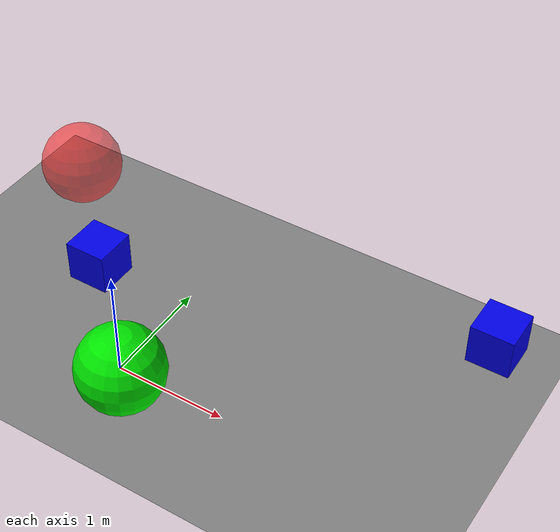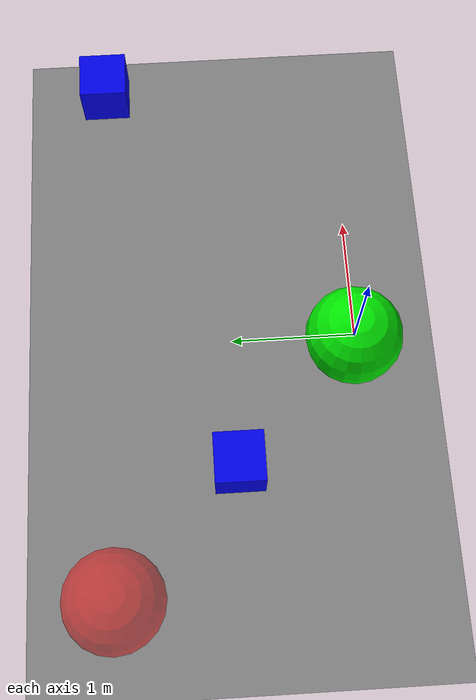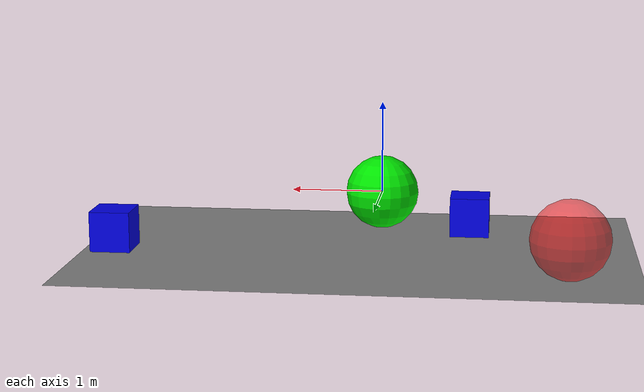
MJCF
<mujoco>
    <option gravity="0 0 0" timestep="0.005"/>
    <worldbody>
        <geom name='floor' pos='0 0 -0.4' size='5 5 0.00000001' type='plane' condim='3'/>
        <body name="ball" pos="0 0 0">
            <light diffuse="1.5 1.5 1.5" pos="0 0 2" dir="0 0 -1" mode="track"/>
            <joint axis="1 0 0" damping="0" name="slide0" pos="0 0 0" type="slide"/>
            <joint axis="0 1 0" damping="0" name="slide1" pos="0 0 0" type="slide"/>
            <joint axis="0 0 1" damping="0" name="slide2" pos="0 0 0" type="slide"/>
            <geom type="sphere" size="0.4" mass="100" rgba="0 .9 0 1"/>
        </body>
	<body mocap="true" name="mocap1" pos="-2 2 0">
            <light name="light1" pos="0 0 2" mode="fixed" castshadow="false"/>
			<geom conaffinity="0" contype="0" pos="0 0 0" rgba="1 0 0 0.5" size="0.4" type="sphere" />
	</body>
        <body name="box" pos="-1 1 0">
            <geom mass="100" size="0.2 0.2 0.2" type="box" rgba="0 0 0.9 1"/>
            <joint axis="1 0 0" name="box1:slidex" type="slide"/>
            <joint axis="0 1 0" name="box1:slidey" type="slide"/>
        </body>
	<body name="box2" pos="2.5 2 0">
            <geom mass="10" size="0.2 0.2 0.2" type="box" rgba="0 0 0.9 1"/>
            <joint axis="1 0 0" name="box2:slidex" type="slide"/>
            <joint axis="0 1 0" name="box2:slidey" type="slide"/>
        </body>
    </worldbody>
    <actuator>
        <motor gear="1" joint="slide0"/>
        <motor gear="1" joint="slide1"/>
        <motor gear="0" joint="slide2"/>
    </actuator>
</mujoco>
